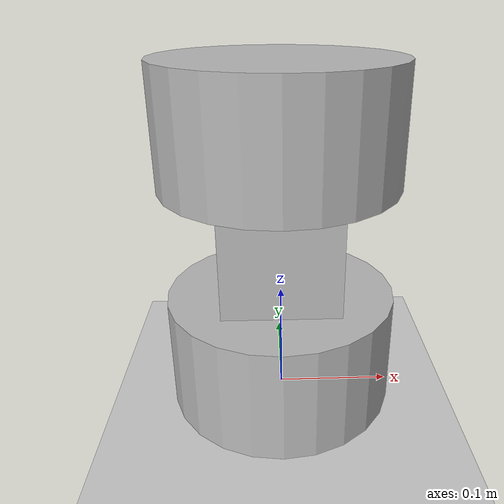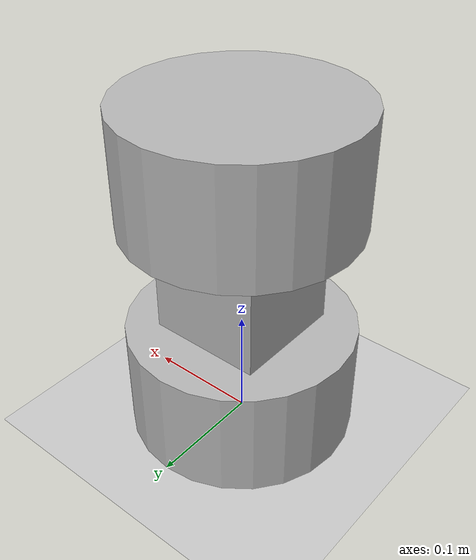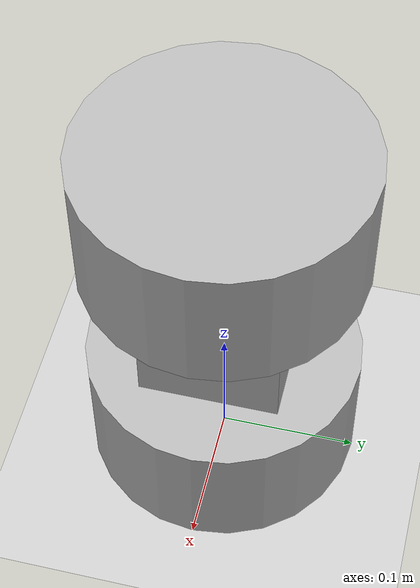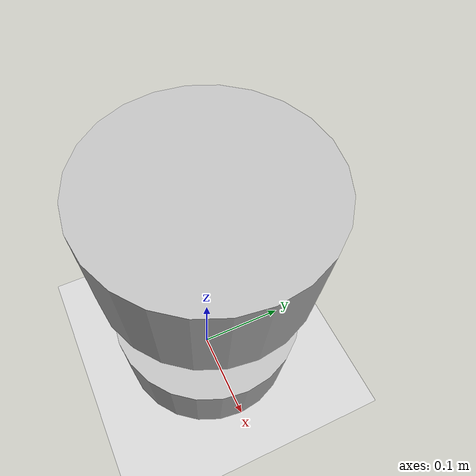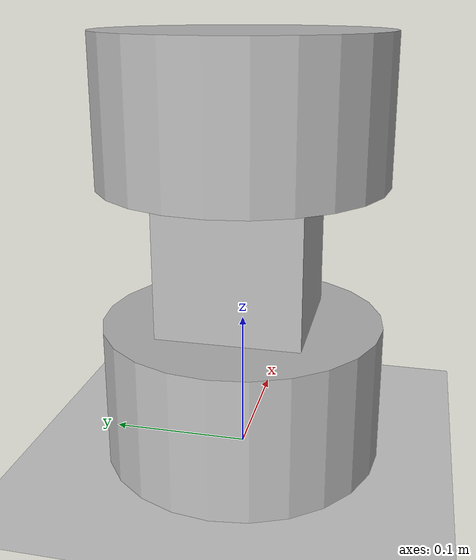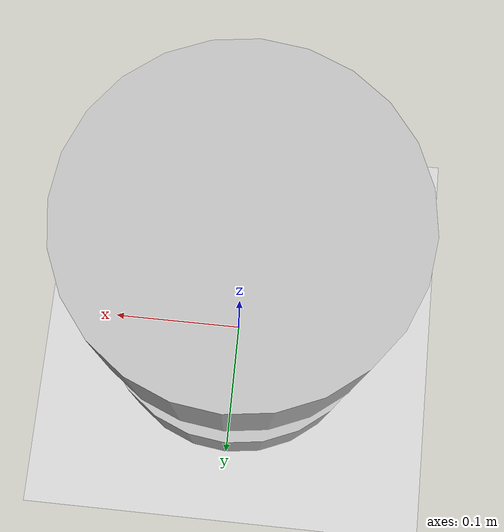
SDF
<?xml version="1.0" ?>

<sdf version="1.6">
  <world name="sensors">
    <physics name="1ms" type="ignored">
      <max_step_size>0.001</max_step_size>
      <real_time_factor>1.0</real_time_factor>
    </physics>
    <plugin
      filename="gz-sim-physics-system"
      name="gz::sim::systems::Physics">
    </plugin>
    <plugin
      filename="gz-sim-forcetorque-system"
      name="gz::sim::systems::ForceTorque">
    </plugin>
    <plugin
      filename="gz-sim-user-commands-system"
      name="gz::sim::systems::UserCommands">
    </plugin>
    <plugin
      filename="gz-sim-scene-broadcaster-system"
      name="gz::sim::systems::SceneBroadcaster">
    </plugin>

    <light type="directional" name="sun">
      <cast_shadows>true</cast_shadows>
      <pose>0 0 10 0 0 0</pose>
      <diffuse>0.8 0.8 0.8 1</diffuse>
      <specular>0.2 0.2 0.2 1</specular>
      <attenuation>
        <range>1000</range>
        <constant>0.9</constant>
        <linear>0.01</linear>
        <quadratic>0.001</quadratic>
      </attenuation>
      <direction>-0.5 0.1 -0.9</direction>
    </light>

    <model name="ground_plane">
      <static>true</static>
      <link name="link">
        <collision name="collision">
          <geometry>
            <plane>
              <normal>0 0 1</normal>
              <size>100 100</size>
            </plane>
          </geometry>
        </collision>
        <visual name="visual">
          <geometry>
            <plane>
              <normal>0 0 1</normal>
              <size>100 100</size>
            </plane>
          </geometry>
          <material>
            <ambient>0.8 0.8 0.8 1</ambient>
            <diffuse>0.8 0.8 0.8 1</diffuse>
            <specular>0.8 0.8 0.8 1</specular>
          </material>
        </visual>
      </link>
    </model>

    <model name="force_torque_model">
      <plugin name="gzyarp::ForceTorque" filename="gz-sim-yarp-forcetorque-system">
        <yarpConfigurationString>(yarpDeviceName forcetorque_plugin_device1) (jointName joint_12) (sensorName force_torque_sensor1)</yarpConfigurationString>
      </plugin>
      <plugin name="gzyarp::ForceTorque" filename="gz-sim-yarp-forcetorque-system">
        <yarpConfigurationString>(yarpDeviceName forcetorque_plugin_device2) (jointName joint_23) (sensorName force_torque_sensor2)</yarpConfigurationString>
      </plugin>
      <link name="link_1">
        <inertial>
          <pose>0 0 0.05 0 0 0</pose>
          <inertia>
            <ixx>0.020000</ixx>
            <ixy>0.000000</ixy>
            <ixz>0.000000</ixz>
            <iyy>0.020000</iyy>
            <iyz>0.000000</iyz>
            <izz>0.020000</izz>
          </inertia>
          <mass>10.000000</mass>
        </inertial>
        <visual name="visual_cylinder">
          <pose>0 0 0.05 0 0 0</pose>
          <geometry>
            <cylinder>
              <radius>0.100000</radius>
              <length>0.100000</length>
            </cylinder>
          </geometry>
        </visual>
        <collision name="collision_cylinder">
          <pose>0 0 0.05 0 0 0</pose>
          <max_contacts>250</max_contacts>
          <geometry>
            <cylinder>
              <radius>0.100000</radius>
              <length>0.100000</length>
            </cylinder>
          </geometry>
        </collision>
      </link>
      <link name="link_2">
        <pose>0 0 0.15 0 0 0</pose>
        <inertial>
          <pose>0 0 0.0 0 0 0</pose>
          <inertia>
            <ixx>0.020000</ixx>
            <ixy>0.000000</ixy>
            <ixz>0.000000</ixz>
            <iyy>0.020000</iyy>
            <iyz>0.000000</iyz>
            <izz>0.020000</izz>
          </inertia>
          <mass>10.000000</mass>
        </inertial>
        <visual name="visual_box">
          <pose>0 0 0.0 0 0 0</pose>
          <geometry>
            <box>
              <size>0.1 0.1 0.1</size>
            </box>
          </geometry>
        </visual>
        <collision name="collision_box">
          <pose>0 0 0.0 0 0 0</pose>
          <geometry>
            <box>
              <size>0.1 0.1 0.1</size>
            </box>
          </geometry>
        </collision>
      </link>
      <link name="link_3">
        <inertial>
          <pose>0 0 0.25 0 0 0</pose>
          <inertia>
            <ixx>0.020000</ixx>
            <ixy>0.000000</ixy>
            <ixz>0.000000</ixz>
            <iyy>0.020000</iyy>
            <iyz>0.000000</iyz>
            <izz>0.020000</izz>
          </inertia>
          <mass>10.000000</mass>
        </inertial>
        <visual name="visual_cylinder">
          <pose>0 0 0.25 0 0 0</pose>
          <geometry>
            <cylinder>
              <radius>0.100000</radius>
              <length>0.100000</length>
            </cylinder>
          </geometry>
        </visual>
        <collision name="collision_cylinder">
          <pose>0 0 0.25 0 0 0</pose>
          <max_contacts>250</max_contacts>
          <geometry>
            <cylinder>
              <radius>0.100000</radius>
              <length>0.100000</length>
            </cylinder>
          </geometry>
        </collision>
      </link>

      <joint name="joint_01" type="fixed">
        <parent>world</parent>
        <child>link_1</child>
        <pose>0 0 0.0 0 0 0</pose>
      </joint>
      <joint name="joint_12" type="revolute">
        <parent>link_1</parent>
        <child>link_2</child>
        <pose>0 0 0 0 0 0</pose>
        <sensor name="force_torque_sensor1" type="force_torque">
          <always_on>true</always_on>
          <visualize>true</visualize>
          <update_rate>30</update_rate>
        </sensor>
      </joint>
      <joint name="joint_23" type="revolute">
        <parent>link_2</parent>
        <child>link_3</child>
        <pose>0 0 0 0 0 0</pose>
        <sensor name="force_torque_sensor2" type="force_torque">
          <always_on>true</always_on>
          <visualize>true</visualize>
          <update_rate>30</update_rate>
        </sensor>
      </joint>
      <plugin name="gzyarp::RobotInterface" filename="gz-sim-yarp-robotinterface-system">
        <yarpRobotInterfaceConfigurationFile>model://forcetorque/model_two_sensors/forcetorque2sensors_nws.xml</yarpRobotInterfaceConfigurationFile>
      </plugin>
    </model>
  </world>
</sdf>
